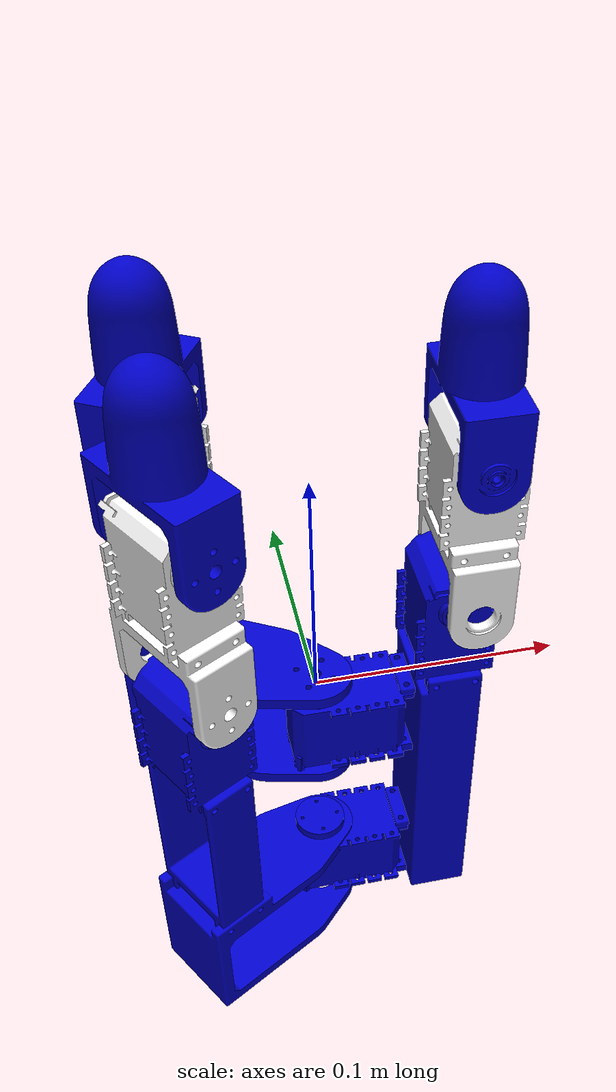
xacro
<?xml version="1.0"?>
<robot xmlns:xacro="http://www.ros.org/wiki/xacro" name="p_hand">

<!--
=================
DEFINITIONS
=================
 -->

<!-- CONSTANTS -->
<!-- Degrees to radians -->
<xacro:property name="deg2rad_90" value="1.5708" />

<!-- Limits -->
<xacro:property name="swivel_buffer" value="60.0" />

<!-- Joint displacements -->
<xacro:property name="swivel_length" value="0.060" />
<xacro:property name="swivel_height" value="0.045" />
<xacro:property name="lower_length" value="0.065" />
<xacro:property name="tip_length" value="0.062" />
<xacro:property name="tip_inward" value="0.007" />

<!-- STL Origin offsets -->
<xacro:property name="base_link_origin_offset">
  <origin xyz="-0.0115 0 -0.127" rpy="0 0 0" />
</xacro:property>

<xacro:property name="swivel1_origin_offset">
  <origin xyz="0 0 -0.045" rpy="0 0 0" />
</xacro:property>

<xacro:property name="swivel2_origin_offset">
  <origin xyz="0 0 -0.140" rpy="0 0 0" />
</xacro:property>

<xacro:property name="lower_origin_offset">
  <origin xyz="0 0 -0.025" rpy="0 0 0" />
</xacro:property>

<xacro:property name="upper_origin_offset">
  <origin xyz="0 0 -0.025" rpy="0 0 0" />
</xacro:property>

<!-- Colors -->
<xacro:property name="blue">
  <material name="blue">
    <color rgba="0 0 .8 1"/>
  </material>
</xacro:property>

<xacro:property name="white">
  <material name="white">
    <color rgba="1 1 1 1"/>
  </material>
</xacro:property>

<!-- MACROS -->
<!-- Conversions -->
<xacro:macro name="limit_deg2rad" params="effort lower upper velocity">
  <limit effort="${effort}" lower="${lower*0.0174533}" upper="${upper*0.0174533}" velocity="${velocity}" />
</xacro:macro>

<!-- Generic shortcuts -->
<xacro:macro name="vis_col_mesh" params="mesh_name *origin_offset *color">
  <visual>
    <geometry>
      <mesh filename="package://p_hand_description/meshes/${mesh_name}.STL" />
    </geometry>
    <xacro:insert_block name="origin_offset" />
    <xacro:insert_block name="color" />
  </visual>
  <collision>
    <geometry>
      <mesh filename="package://p_hand_description/meshes/${mesh_name}.STL" />
    </geometry>
    <xacro:insert_block name="origin_offset" />
  </collision>
</xacro:macro>

<!-- Links -->
<xacro:macro name="lower_link" params="finger *color">
  <link name="lower${finger}">
    <xacro:vis_col_mesh mesh_name="lower">
      <xacro:insert_block name="lower_origin_offset" />
      <xacro:insert_block name="color" />
    </xacro:vis_col_mesh>
  </link>
</xacro:macro>

<xacro:macro name="upper_link" params="finger *color">
  <link name="upper${finger}">
    <xacro:vis_col_mesh mesh_name="upper">
      <xacro:insert_block name="upper_origin_offset" />
      <xacro:insert_block name="color" />
    </xacro:vis_col_mesh>
  </link>
</xacro:macro>

<!-- Joints -->
<xacro:macro name="swivel_lower_joint" params="finger">
  <xacro:if value="${finger}">
    <xacro:property name="parent_name" value="swivel${finger}" />
  </xacro:if>
  <xacro:unless value="${finger}">
    <xacro:property name="parent_name" value="base_link" />
  </xacro:unless>
  <joint name="${parent_name}_lower${finger}" type="revolute">
    <parent link="${parent_name}" />
    <child link="lower${finger}" />
    <xacro:limit_deg2rad effort="1000.0" lower="-90.0" upper="50.0" velocity="0.5" />
    <origin xyz="${swivel_length} 0 ${swivel_height}" rpy="${deg2rad_90}  0 0" />
    <axis xyz="0 0 1" />
  </joint>
</xacro:macro>

<xacro:macro name="lower_upper_joint" params="finger">
  <joint name="lower${finger}_upper${finger}" type="revolute">
    <parent link="lower${finger}" />
    <child link="upper${finger}" />
    <xacro:limit_deg2rad effort="1000.0" lower="-90.0" upper="100.0" velocity="0.5" />
    <origin xyz="0 ${lower_length} 0" rpy="0  0 0" />
    <axis xyz="0 0 1" />
  </joint>
</xacro:macro>

<xacro:macro name="tip_joint" params="finger">
  <joint name="upper${finger}_tip${finger}" type="fixed">
    <parent link="upper${finger}" />
    <child link="tip${finger}" />
    <origin xyz="${-1*tip_inward} ${tip_length} 0" rpy="0  0 0" />
  </joint>
</xacro:macro>

<!--
=================
ROBOT DESCRIPTION
=================
 -->

<!-- LINKS -->
  <!-- Base and swivels -->
  <link name="base_link">
    <xacro:vis_col_mesh mesh_name="base_link">
      <xacro:insert_block name="base_link_origin_offset" />
      <xacro:insert_block name="blue" />
    </xacro:vis_col_mesh>
  </link>

  <link name="swivel1">
    <xacro:vis_col_mesh mesh_name="swivel1">
      <xacro:insert_block name="swivel1_origin_offset" />
      <xacro:insert_block name="blue" />
    </xacro:vis_col_mesh>
  </link>

  <link name="swivel2">
    <xacro:vis_col_mesh mesh_name="swivel2">
      <xacro:insert_block name="swivel2_origin_offset" />
      <xacro:insert_block name="blue" />
    </xacro:vis_col_mesh>
  </link>

  <!-- Lowers -->
  <xacro:lower_link finger="0">
      <xacro:insert_block name="white" />
  </xacro:lower_link>

  <xacro:lower_link finger="1">
      <xacro:insert_block name="white" />
  </xacro:lower_link>

  <xacro:lower_link finger="2">
      <xacro:insert_block name="white" />
  </xacro:lower_link>

  <!-- Uppers -->
  <xacro:upper_link finger="0">
      <xacro:insert_block name="blue" />
  </xacro:upper_link>

  <xacro:upper_link finger="1">
      <xacro:insert_block name="blue" />
  </xacro:upper_link>

  <xacro:upper_link finger="2">
      <xacro:insert_block name="blue" />
  </xacro:upper_link>

  <!-- Tips -->
  <link name="tip0"/>
  <link name="tip1"/>
  <link name="tip2"/>

<!-- JOINTS -->
  <!-- Base and swivels -->
  <joint name="base_link_swivel1" type="revolute">
    <parent link="base_link" />
    <child link="swivel1" />
    <xacro:limit_deg2rad effort="1000.0" lower="${swivel_buffer}" upper="${360.0-2.0*swivel_buffer}"
    velocity="0.5" />
    <origin xyz="0 0 0" rpy="0 0 0" />
    <axis xyz="0 0 1" />
  </joint>

  <joint name="base_link_swivel2" type="revolute">
    <parent link="base_link" />
    <child link="swivel2" />
    <xacro:limit_deg2rad effort="1000.0" lower="${2.0*swivel_buffer}" upper="${360.0-swivel_buffer}"
    velocity="0.5" />
    <origin xyz="0 0 0" rpy="0 0 0" />
    <axis xyz="0 0 1" />
  </joint>

  <!-- Lowers -->
  <xacro:swivel_lower_joint finger="0" />
  <xacro:swivel_lower_joint finger="1" />
  <xacro:swivel_lower_joint finger="2" />

  <!-- Uppers -->
  <xacro:lower_upper_joint finger="0" />
  <xacro:lower_upper_joint finger="1" />
  <xacro:lower_upper_joint finger="2" />

  <!-- Tips -->
  <xacro:tip_joint finger="0" />
  <xacro:tip_joint finger="1" />
  <xacro:tip_joint finger="2" />

</robot>
